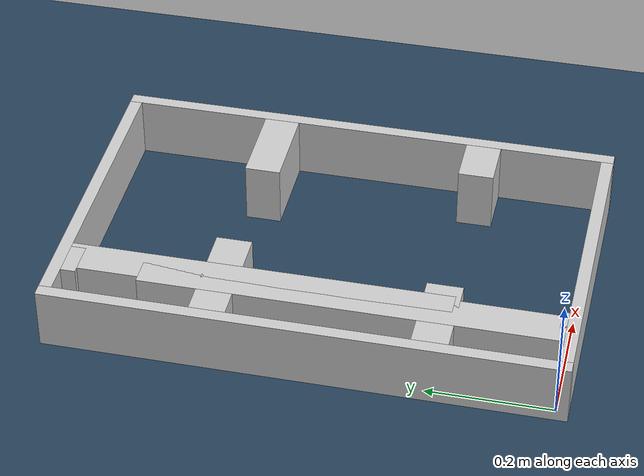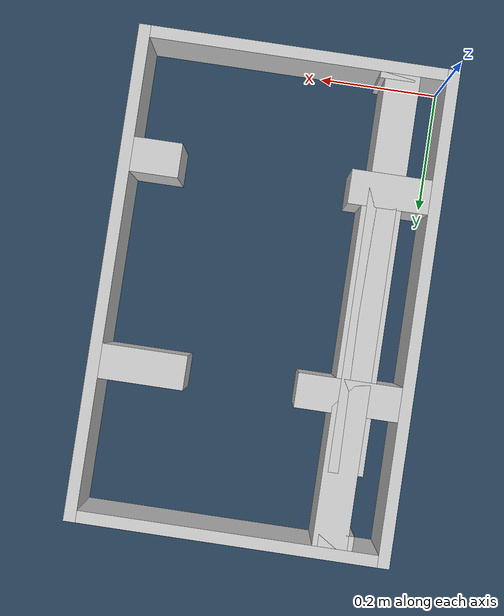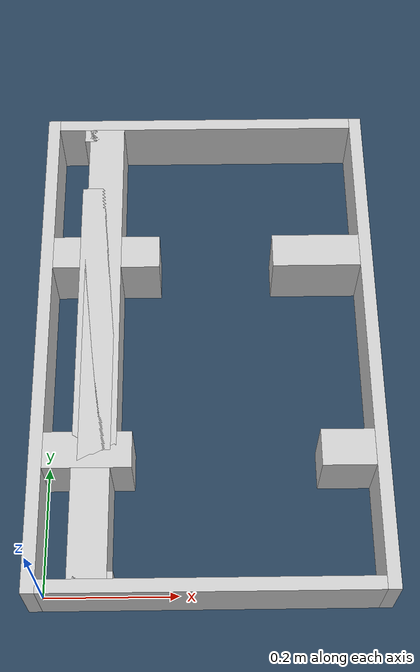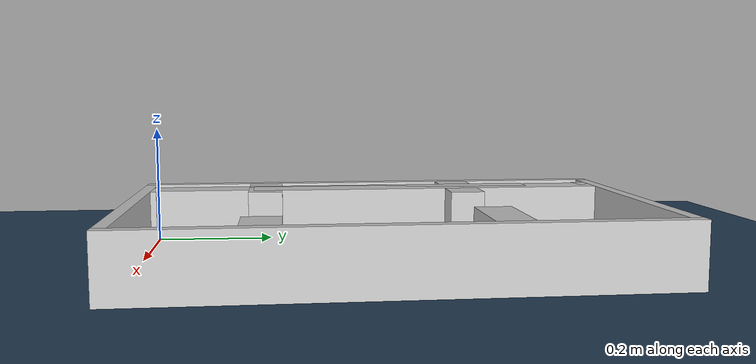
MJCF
<?xml version="1.0" ?>
<mujoco model="generated_real_template">
  <compiler angle="degree"/>
  <option timestep="0.002" integrator="implicitfast" iterations="100" cone="elliptic"/>
  <default>
    <geom density="1"/>
  </default>
  <asset>
    <texture builtin="gradient" height="3072" rgb1="0.3 0.5 0.7" rgb2="0 0 0" type="skybox" width="512"/>
    <texture builtin="checker" height="300" mark="edge" markrgb="0.8 0.8 0.8" name="groundplane" rgb1="0.2 0.3 0.4" rgb2="0.1 0.2 0.3" type="2d" width="300"/>
    <material name="groundplane" reflectance="0.2" texrepeat="5 5" texture="groundplane" texuniform="true"/>
  </asset>
  <worldbody>
    <light dir="0 0 -1" directional="true" pos="0 0 1.5"/>
    <geom name="floor" type="plane" condim="4" friction="0.5 0.005 0.001" material="groundplane" size="0 0 0.05"/>
    <body name="walls">
      <geom name="wall_boundary_left" type="box" condim="4" friction="1.0 0.005 0.0001" rgba="0.8 0.8 0.8 1" pos="-0.010000 0.387500 0.050000" euler="0 0 0.000000" size="0.010000 0.407500 0.050000"/>
      <geom name="wall_boundary_right" type="box" condim="4" friction="1.0 0.005 0.0001" rgba="0.8 0.8 0.8 1" pos="0.500000 0.387500 0.050000" euler="0 0 0.000000" size="0.010000 0.407500 0.050000"/>
      <geom name="wall_boundary_bottom" type="box" condim="4" friction="1.0 0.005 0.0001" rgba="0.8 0.8 0.8 1" pos="0.245000 -0.010000 0.050000" euler="0 0 0.000000" size="0.245000 0.010000 0.050000"/>
      <geom name="wall_boundary_top" type="box" condim="4" friction="1.0 0.005 0.0001" rgba="0.8 0.8 0.8 1" pos="0.245000 0.785000 0.050000" euler="0 0 0.000000" size="0.245000 0.010000 0.050000"/>
      <geom name="wall_inner_1_1" type="box" condim="4" friction="1.0 0.005 0.0001" rgba="0.8 0.8 0.8 1" pos="0.065862 0.192858 0.050000" euler="0 0 0.000000" size="0.065862 0.028500 0.050000"/>
      <geom name="wall_inner_1_2" type="box" condim="4" friction="1.0 0.005 0.0001" rgba="0.8 0.8 0.8 1" pos="0.449980 0.192858 0.050000" euler="0 0 0.000000" size="0.040020 0.028500 0.050000"/>
      <geom name="wall_inner_2_1" type="box" condim="4" friction="1.0 0.005 0.0001" rgba="0.8 0.8 0.8 1" pos="0.080132 0.005058 0.050000" euler="0 0 90.000000" size="0.005058 0.028500 0.050000"/>
      <geom name="wall_inner_2_2" type="box" condim="4" friction="1.0 0.005 0.0001" rgba="0.8 0.8 0.8 1" pos="0.080132 0.473707 0.050000" euler="0 0 90.000000" size="0.301293 0.028500 0.050000"/>
      <geom name="wall_inner_3_1" type="box" condim="4" friction="1.0 0.005 0.0001" rgba="0.8 0.8 0.8 1" pos="0.071522 0.327456 0.050000" euler="0 0 90.000000" size="0.327456 0.028500 0.050000"/>
      <geom name="wall_inner_3_2" type="box" condim="4" friction="1.0 0.005 0.0001" rgba="0.8 0.8 0.8 1" pos="0.071522 0.763239 0.050000" euler="0 0 90.000000" size="0.011761 0.028500 0.050000"/>
      <geom name="wall_inner_4_1" type="box" condim="4" friction="1.0 0.005 0.0001" rgba="0.8 0.8 0.8 1" pos="0.084920 0.532232 0.050000" euler="0 0 0.000000" size="0.084920 0.028500 0.050000"/>
      <geom name="wall_inner_4_2" type="box" condim="4" friction="1.0 0.005 0.0001" rgba="0.8 0.8 0.8 1" pos="0.420294 0.532232 0.050000" euler="0 0 0.000000" size="0.069706 0.028500 0.050000"/>
    </body>
  </worldbody>
</mujoco>
